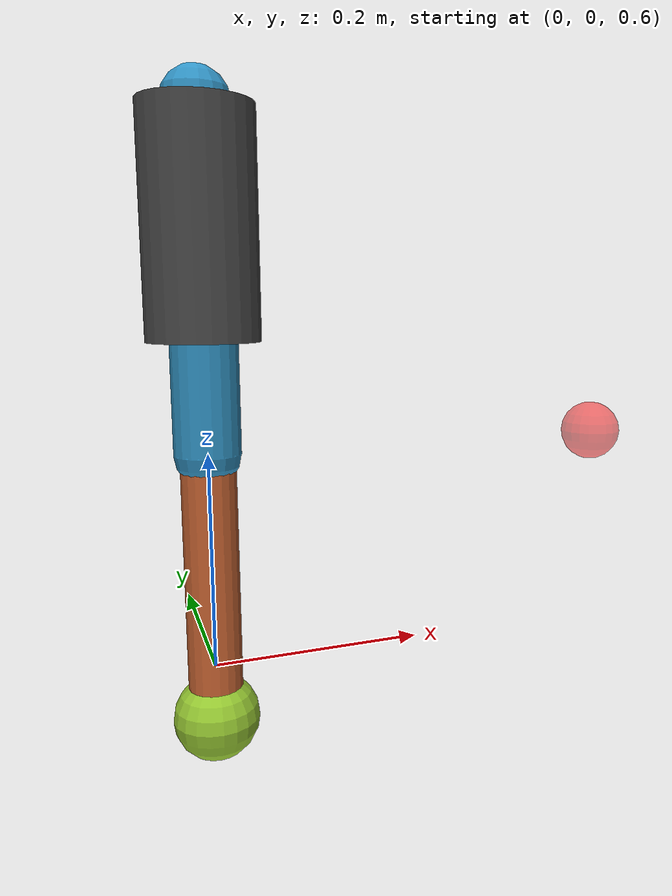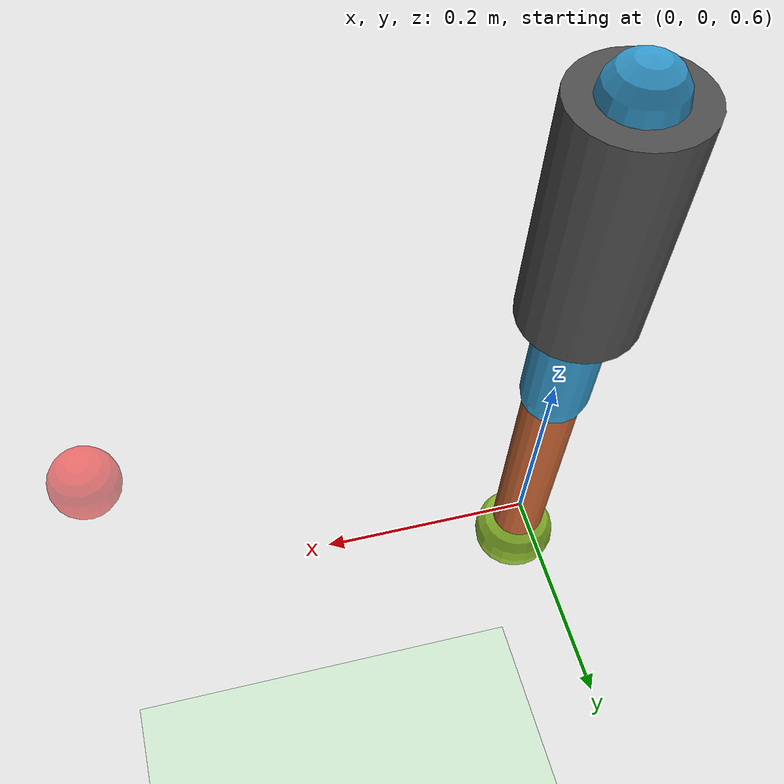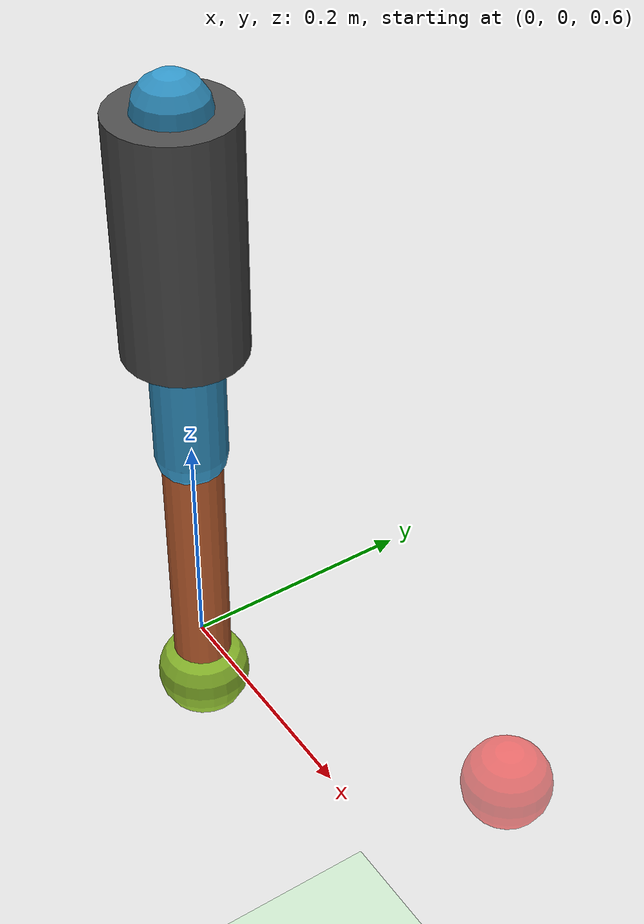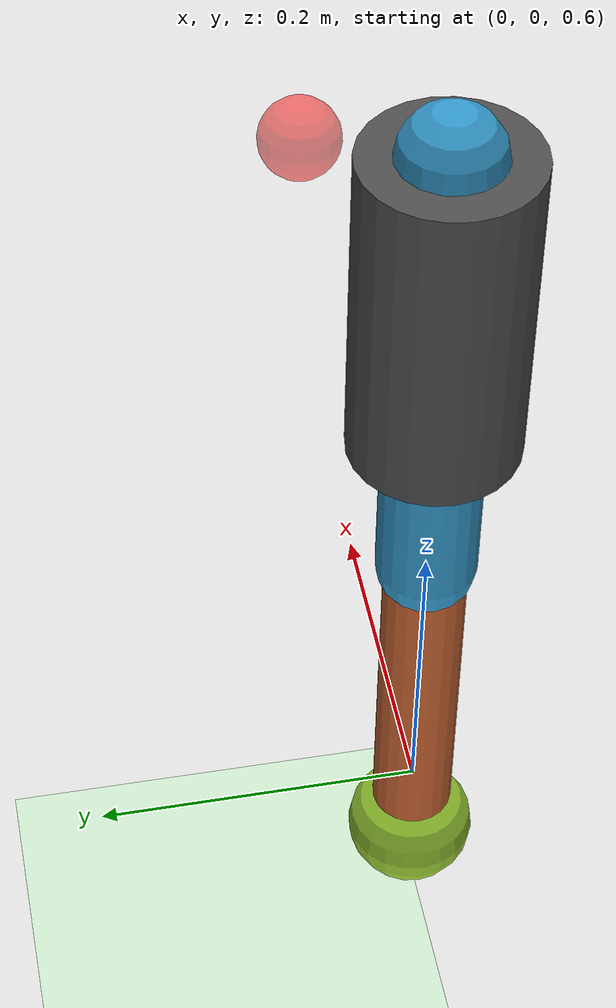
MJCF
<mujoco model="elbow_exoskeleton">
  <compiler angle="degree" coordinate="local" inertiafromgeom="true"/>

  <option timestep="0.002" integrator="RK4"/>

  <default>
    <joint armature="0.1" damping="0.1" limited="true"/>
    <geom conaffinity="0" contype="0" density="5.0" friction="1 0.5 0.005" rgba="0.8 0.6 0.4 1"/>
    <motor ctrllimited="true" ctrlrange="-10 10"/>
  </default>

  <asset>
    <texture builtin="gradient" height="100" rgb1="1 1 1" rgb2="0 0 0" type="skybox" width="100"/>
    <texture builtin="flat" height="1278" mark="cross" markrgb="1 1 1" name="texgeom" random="0.01" rgb1="0.8 0.6 0.4" rgb2="0.8 0.6 0.4" type="cube" width="127"/>
    <texture builtin="checker" height="100" name="texplane" rgb1="0 0 0" rgb2="0.8 0.8 0.8" type="2d" width="100"/>
    <material name="MatPlane" reflectance="0.5" shininess="1" specular="1" texrepeat="60 60" texture="texplane"/>
    <material name="geom" texture="texgeom" texuniform="true"/>
  </asset>

  <worldbody>
    <light cutoff="100" diffuse="1 1 1" dir="-0 0 -1.3" directional="true" exponent="1" pos="0 0 1.3" specular=".1 .1 .1"/>
    <geom conaffinity="1" condim="3" material="MatPlane" name="floor" pos="0 0 0" rgba="0.8 0.9 0.8 1" size="40 40 40" type="plane"/>

    <!-- Base/Shoulder Mount -->
    <body name="base" pos="0 0 1">
      <geom name="base_geom" type="cylinder" size="0.05 0.1" rgba="0.3 0.3 0.3 1"/>

      <!-- Upper Arm -->
      <body name="upper_arm" pos="0 0 0.1">
        <joint name="shoulder_joint" type="hinge" axis="0 1 0" range="-45 135" pos="0 0 0"/>
        <geom name="upper_arm_geom" type="capsule" size="0.03" fromto="0 0 0 0 0 -0.3" rgba="0.2 0.6 0.8 1"/>

        <!-- Forearm -->
        <body name="forearm" pos="0 0 -0.3">
          <joint name="elbow_joint" type="hinge" axis="0 1 0" range="0 150" pos="0 0 0"/>
          <geom name="forearm_geom" type="capsule" size="0.025" fromto="0 0 0 0 0 -0.25" rgba="0.8 0.4 0.2 1"/>

          <!-- Hand/End Effector -->
          <body name="hand" pos="0 0 -0.25">
            <geom name="hand_geom" type="sphere" size="0.04" rgba="0.6 0.8 0.2 1"/>
          </body>
        </body>
      </body>
    </body>

    <!-- Target position indicator -->
    <body name="target" pos="0.4 0 0.8">
      <geom name="target_geom" type="sphere" size="0.03" rgba="1 0 0 0.5" contype="0" conaffinity="0"/>
    </body>
  </worldbody>

  <actuator>
    <motor name="shoulder_motor" joint="shoulder_joint" gear="10"/>
    <motor name="elbow_motor" joint="elbow_joint" gear="10"/>
  </actuator>

  <sensor>
    <jointpos name="shoulder_pos" joint="shoulder_joint"/>
    <jointvel name="shoulder_vel" joint="shoulder_joint"/>
    <jointpos name="elbow_pos" joint="elbow_joint"/>
    <jointvel name="elbow_vel" joint="elbow_joint"/>
    <actuatorfrc name="shoulder_torque" actuator="shoulder_motor"/>
    <actuatorfrc name="elbow_torque" actuator="elbow_motor"/>
  </sensor>
</mujoco>
